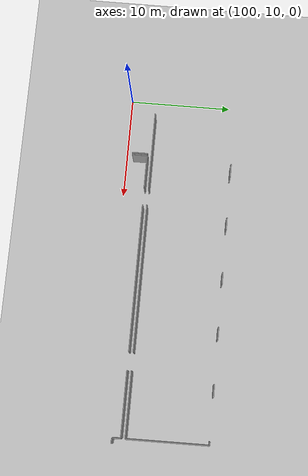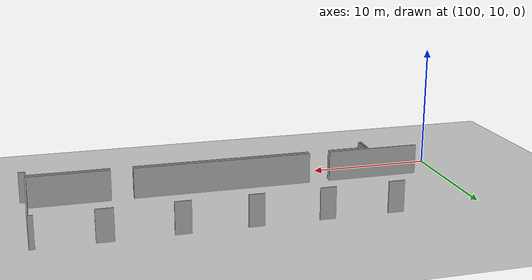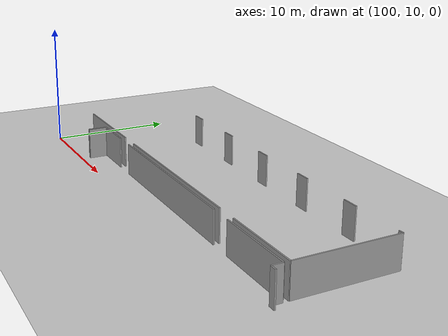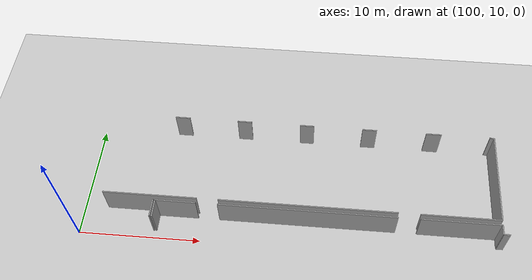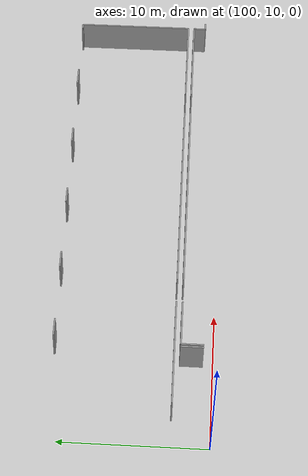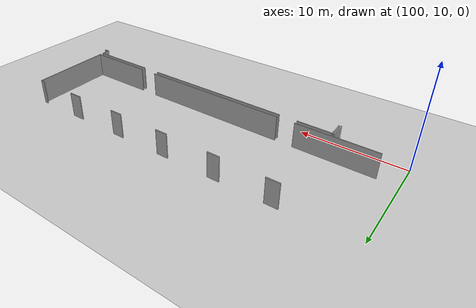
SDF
<sdf version="1.6">
 <world name="default">
  <model name="ground_plane">
   <static>1</static>
   <link name="link">
    <collision name="collision">
     <geometry><plane><normal>0 0 1</normal><size>100 100</size></plane></geometry>
     <surface><friction><ode><mu>100</mu><mu2>50</mu2></ode></friction></surface>
    </collision>
    <visual name="visual">
     <cast_shadows>0</cast_shadows>
     <geometry><plane><normal>0 0 1</normal><size>100 100</size></plane></geometry>
     <material>
      <script><uri>file://media/materials/scripts/gazebo.material</uri><name>Gazebo/Grey</name></script>
     </material>
    </visual>
   </link>
  </model>
  <model name="50037765_PLAN3">
   <static>1</static>
   <link name="Wall_336">
    <collision name="Wall_336_Collision">
     <geometry><box><size>1.54942841347 0.1 2.5</size></box></geometry>
     <pose>0.774714206737 0 1.25 0 0 0</pose>
    </collision>
    <visual name="Wall_336_Visual">
     <pose>0.774714206737 0 1.25 0 0 0</pose>
     <geometry><box><size>1.54942841347 0.1 2.5</size></box></geometry>
     <material>
      <script><uri>file://media/materials/scripts/gazebo.material</uri><name>Gazebo/Grey</name></script>
      <ambient>1 1 1 1</ambient>
     </material>
    </visual>
    <pose>241.883293406 -8.93014507304 0 0 0 -1.57079632679</pose>
   </link>
   <link name="Wall_424">
    <collision name="Wall_424_Collision">
     <geometry><box><size>6.41295299583 0.1 2.5</size></box></geometry>
     <pose>3.20647649791 0 1.25 0 0 0</pose>
    </collision>
    <visual name="Wall_424_Visual">
     <pose>3.20647649791 0 1.25 0 0 0</pose>
     <geometry><box><size>6.41295299583 0.1 2.5</size></box></geometry>
     <material>
      <script><uri>file://media/materials/scripts/gazebo.material</uri><name>Gazebo/Grey</name></script>
      <ambient>1 1 1 1</ambient>
     </material>
    </visual>
    <pose>269.759177475 -8.55403541994 0 0 0 3.14159265359</pose>
   </link>
   <link name="Wall_425">
    <collision name="Wall_425_Collision">
     <geometry><box><size>14.4755320298 0.1 2.5</size></box></geometry>
     <pose>7.23776601491 0 1.25 0 0 0</pose>
    </collision>
    <visual name="Wall_425_Visual">
     <pose>7.23776601491 0 1.25 0 0 0</pose>
     <geometry><box><size>14.4755320298 0.1 2.5</size></box></geometry>
     <material>
      <script><uri>file://media/materials/scripts/gazebo.material</uri><name>Gazebo/Grey</name></script>
      <ambient>1 1 1 1</ambient>
     </material>
    </visual>
    <pose>261.579675794 -8.55403541994 0 0 0 3.14159265359</pose>
   </link>
   <link name="Wall_426">
    <collision name="Wall_426_Collision">
     <geometry><box><size>7.68740984565 0.1 2.5</size></box></geometry>
     <pose>3.84370492282 0 1.25 0 0 0</pose>
    </collision>
    <visual name="Wall_426_Visual">
     <pose>3.84370492282 0 1.25 0 0 0</pose>
     <geometry><box><size>7.68740984565 0.1 2.5</size></box></geometry>
     <material>
      <script><uri>file://media/materials/scripts/gazebo.material</uri><name>Gazebo/Grey</name></script>
      <ambient>1 1 1 1</ambient>
     </material>
    </visual>
    <pose>245.365554842 -8.55403541994 0 0 0 3.14159265359</pose>
   </link>
   <link name="Wall_429">
    <collision name="Wall_429_Collision">
     <geometry><box><size>1.26327294448 0.1 2.5</size></box></geometry>
     <pose>0.63163647224 0 1.25 0 0 0</pose>
    </collision>
    <visual name="Wall_429_Visual">
     <pose>0.63163647224 0 1.25 0 0 0</pose>
     <geometry><box><size>1.26327294448 0.1 2.5</size></box></geometry>
     <material>
      <script><uri>file://media/materials/scripts/gazebo.material</uri><name>Gazebo/Grey</name></script>
      <ambient>1 1 1 1</ambient>
     </material>
    </visual>
    <pose>242.297606263 -0.60199912308 0 0 0 0.0</pose>
   </link>
   <link name="Wall_430">
    <collision name="Wall_430_Collision">
     <geometry><box><size>1.22006240111 0.1 2.5</size></box></geometry>
     <pose>0.610031200554 0 1.25 0 0 0</pose>
    </collision>
    <visual name="Wall_430_Visual">
     <pose>0.610031200554 0 1.25 0 0 0</pose>
     <geometry><box><size>1.22006240111 0.1 2.5</size></box></geometry>
     <material>
      <script><uri>file://media/materials/scripts/gazebo.material</uri><name>Gazebo/Grey</name></script>
      <ambient>1 1 1 1</ambient>
     </material>
    </visual>
    <pose>247.724342151 -0.60199912308 0 0 0 0.0</pose>
   </link>
   <link name="Wall_431">
    <collision name="Wall_431_Collision">
     <geometry><box><size>1.19718623109 0.1 2.5</size></box></geometry>
     <pose>0.598593115544 0 1.25 0 0 0</pose>
    </collision>
    <visual name="Wall_431_Visual">
     <pose>0.598593115544 0 1.25 0 0 0</pose>
     <geometry><box><size>1.19718623109 0.1 2.5</size></box></geometry>
     <material>
      <script><uri>file://media/materials/scripts/gazebo.material</uri><name>Gazebo/Grey</name></script>
      <ambient>1 1 1 1</ambient>
     </material>
    </visual>
    <pose>253.148536243 -0.60199912308 0 0 0 0.0</pose>
   </link>
   <link name="Wall_432">
    <collision name="Wall_432_Collision">
     <geometry><box><size>1.23022958778 0.1 2.5</size></box></geometry>
     <pose>0.615114793892 0 1.25 0 0 0</pose>
    </collision>
    <visual name="Wall_432_Visual">
     <pose>0.615114793892 0 1.25 0 0 0</pose>
     <geometry><box><size>1.23022958778 0.1 2.5</size></box></geometry>
     <material>
      <script><uri>file://media/materials/scripts/gazebo.material</uri><name>Gazebo/Grey</name></script>
      <ambient>1 1 1 1</ambient>
     </material>
    </visual>
    <pose>258.509185418 -0.60199912308 0 0 0 0.0</pose>
   </link>
   <link name="Wall_433">
    <collision name="Wall_433_Collision">
     <geometry><box><size>1.30394169118 0.1 2.5</size></box></geometry>
     <pose>0.651970845592 0 1.25 0 0 0</pose>
    </collision>
    <visual name="Wall_433_Visual">
     <pose>0.651970845592 0 1.25 0 0 0</pose>
     <geometry><box><size>1.30394169118 0.1 2.5</size></box></geometry>
     <material>
      <script><uri>file://media/materials/scripts/gazebo.material</uri><name>Gazebo/Grey</name></script>
      <ambient>1 1 1 1</ambient>
     </material>
    </visual>
    <pose>263.951172086 -0.60199912308 0 0 0 0.0</pose>
   </link>
   <link name="Wall_434">
    <collision name="Wall_434_Collision">
     <geometry><box><size>0.373644110339 0.1 2.5</size></box></geometry>
     <pose>0.18682205517 0 1.25 0 0 0</pose>
    </collision>
    <visual name="Wall_434_Visual">
     <pose>0.18682205517 0 1.25 0 0 0</pose>
     <geometry><box><size>0.373644110339 0.1 2.5</size></box></geometry>
     <material>
      <script><uri>file://media/materials/scripts/gazebo.material</uri><name>Gazebo/Grey</name></script>
      <ambient>1 1 1 1</ambient>
     </material>
    </visual>
    <pose>269.344864618 -0.60199912308 0 0 0 0.0</pose>
   </link>
   <link name="Wall_435">
    <collision name="Wall_435_Collision">
     <geometry><box><size>7.95214029136 0.1 2.5</size></box></geometry>
     <pose>3.97607014568 0 1.25 0 0 0</pose>
    </collision>
    <visual name="Wall_435_Visual">
     <pose>3.97607014568 0 1.25 0 0 0</pose>
     <geometry><box><size>7.95214029136 0.1 2.5</size></box></geometry>
     <material>
      <script><uri>file://media/materials/scripts/gazebo.material</uri><name>Gazebo/Grey</name></script>
      <ambient>1 1 1 1</ambient>
     </material>
    </visual>
    <pose>269.718508728 -0.60199912308 0 0 0 -1.56568211571</pose>
   </link>
   <link name="Wall_436">
    <collision name="Wall_436_Collision">
     <geometry><box><size>0.531235503816 0.1 2.5</size></box></geometry>
     <pose>0.265617751908 0 1.25 0 0 0</pose>
    </collision>
    <visual name="Wall_436_Visual">
     <pose>0.265617751908 0 1.25 0 0 0</pose>
     <geometry><box><size>0.531235503816 0.1 2.5</size></box></geometry>
     <material>
      <script><uri>file://media/materials/scripts/gazebo.material</uri><name>Gazebo/Grey</name></script>
      <ambient>1 1 1 1</ambient>
     </material>
    </visual>
    <pose>270.285329385 -9.81354650535 0 0 0 3.14159265359</pose>
   </link>
   <link name="Wall_437">
    <collision name="Wall_437_Collision">
     <geometry><box><size>0.84087717403 0.1 2.5</size></box></geometry>
     <pose>0.420438587015 0 1.25 0 0 0</pose>
    </collision>
    <visual name="Wall_437_Visual">
     <pose>0.420438587015 0 1.25 0 0 0</pose>
     <geometry><box><size>0.84087717403 0.1 2.5</size></box></geometry>
     <material>
      <script><uri>file://media/materials/scripts/gazebo.material</uri><name>Gazebo/Grey</name></script>
      <ambient>1 1 1 1</ambient>
     </material>
    </visual>
    <pose>269.754093881 -9.81354650535 0 0 0 1.57079632679</pose>
   </link>
   <link name="Wall_438">
    <collision name="Wall_438_Collision">
     <geometry><box><size>6.4231201825 0.1 2.5</size></box></geometry>
     <pose>3.21156009125 0 1.25 0 0 0</pose>
    </collision>
    <visual name="Wall_438_Visual">
     <pose>3.21156009125 0 1.25 0 0 0</pose>
     <geometry><box><size>6.4231201825 0.1 2.5</size></box></geometry>
     <material>
      <script><uri>file://media/materials/scripts/gazebo.material</uri><name>Gazebo/Grey</name></script>
      <ambient>1 1 1 1</ambient>
     </material>
    </visual>
    <pose>269.754093881 -8.97266933132 0 0 0 3.14159265359</pose>
   </link>
   <link name="Wall_439">
    <collision name="Wall_439_Collision">
     <geometry><box><size>14.4831574198 0.1 2.5</size></box></geometry>
     <pose>7.24157870991 0 1.25 0 0 0</pose>
    </collision>
    <visual name="Wall_439_Visual">
     <pose>7.24157870991 0 1.25 0 0 0</pose>
     <geometry><box><size>14.4831574198 0.1 2.5</size></box></geometry>
     <material>
      <script><uri>file://media/materials/scripts/gazebo.material</uri><name>Gazebo/Grey</name></script>
      <ambient>1 1 1 1</ambient>
     </material>
    </visual>
    <pose>261.579675794 -8.97266933132 0 0 0 3.14159265359</pose>
   </link>
   <link name="Wall_440">
    <collision name="Wall_440_Collision">
     <geometry><box><size>3.28654309299 0.1 2.5</size></box></geometry>
     <pose>1.64327154649 0 1.25 0 0 0</pose>
    </collision>
    <visual name="Wall_440_Visual">
     <pose>1.64327154649 0 1.25 0 0 0</pose>
     <geometry><box><size>3.28654309299 0.1 2.5</size></box></geometry>
     <material>
      <script><uri>file://media/materials/scripts/gazebo.material</uri><name>Gazebo/Grey</name></script>
      <ambient>1 1 1 1</ambient>
     </material>
    </visual>
    <pose>245.352845859 -8.97266933132 0 0 0 3.14159265359</pose>
   </link>
   <link name="Wall_441">
    <collision name="Wall_441_Collision">
     <geometry><box><size>1.50085467913 0.1 2.5</size></box></geometry>
     <pose>0.750427339565 0 1.25 0 0 0</pose>
    </collision>
    <visual name="Wall_441_Visual">
     <pose>0.750427339565 0 1.25 0 0 0</pose>
     <geometry><box><size>1.50085467913 0.1 2.5</size></box></geometry>
     <material>
      <script><uri>file://media/materials/scripts/gazebo.material</uri><name>Gazebo/Grey</name></script>
      <ambient>1 1 1 1</ambient>
     </material>
    </visual>
    <pose>242.066302766 -8.97266933132 0 0 0 -1.57079632679</pose>
   </link>
   <pose>-135.75 21.1468211655 0 0 0 0</pose>
  </model>
 </world>
</sdf>
